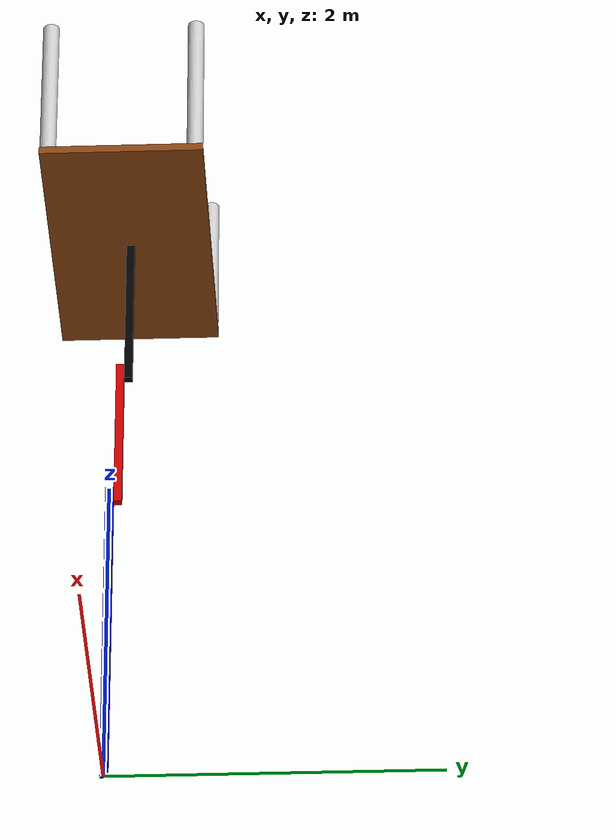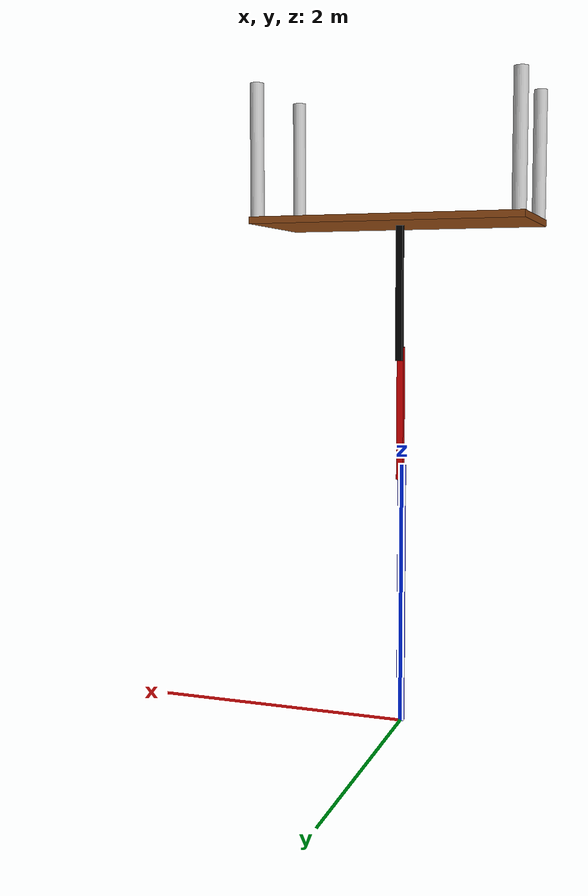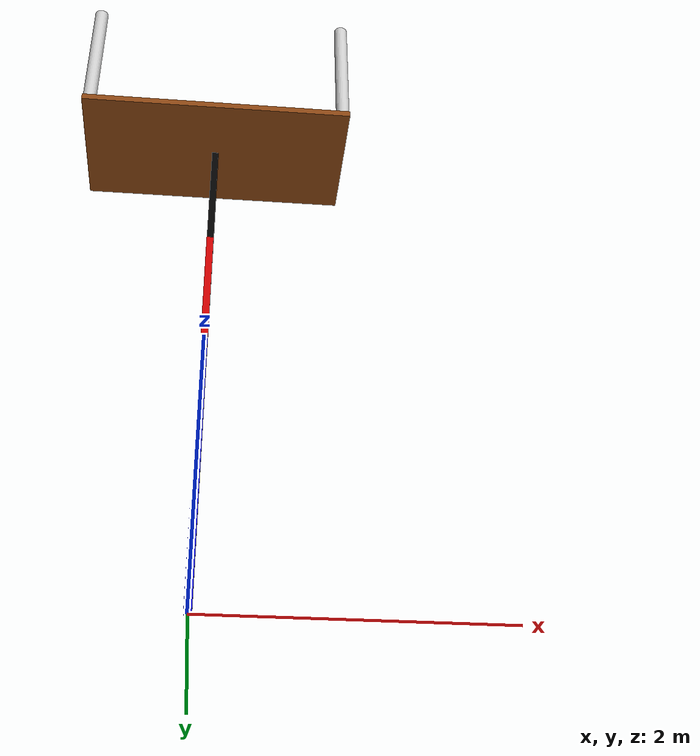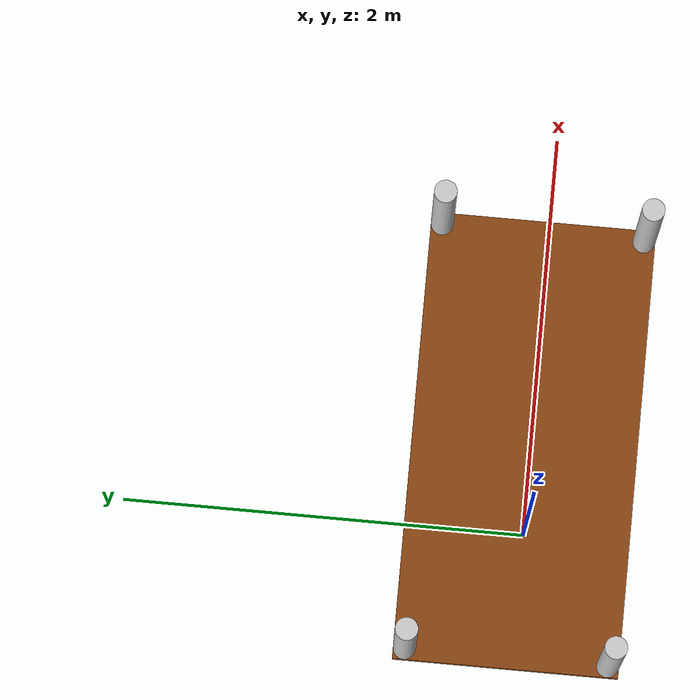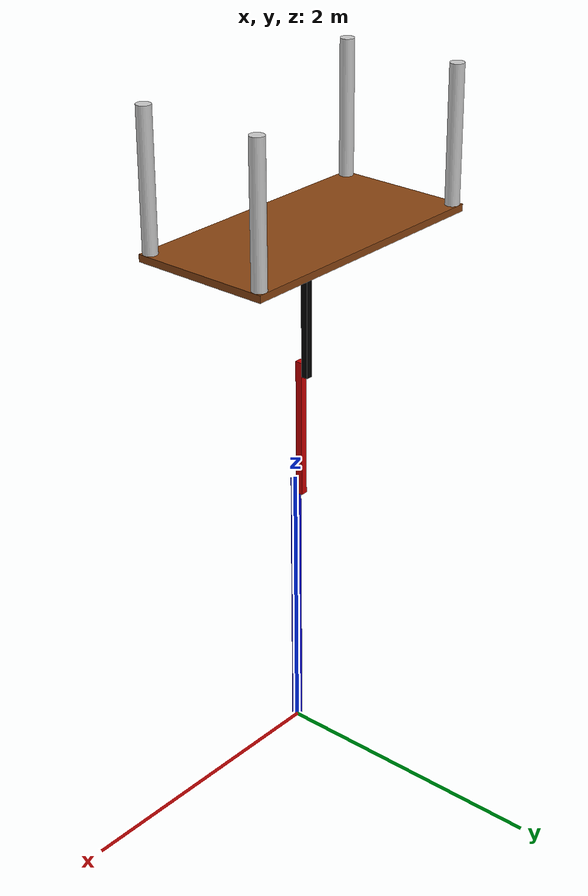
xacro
<?xml version="1.0" encoding="UTF-8"?>
<robot xmlns:xacro="http://wiki.ros.org/xacro" name="table">

    <xacro:include filename="inertials.xacro" />
    <xacro:include filename="materials.xacro" />
    <xacro:include filename="table_macro.xacro" />
    <xacro:include filename="rrbot_macro.xacro" />

    <link name="world" />

    <xacro:rrbot parent="world">
        <origin xyz="0 0 0" rpy="0 0 0" />
    </xacro:rrbot>

    <xacro:table parent="tool0">
        <origin xyz="0 0 0" rpy="${pi} 0 0" />
    </xacro:table>

</robot>

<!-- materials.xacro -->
<robot>
  <material name="black">
    <color rgba="0.0 0.0 0.0 1.0"/>
  </material>

  <material name="blue">
    <color rgba="0.0 0.0 0.8 1.0"/>
  </material>

  <material name="green">
    <color rgba="0.0 1.0 0.0 1.0"/>
  </material>

  <material name="dark_grey">
    <color rgba="0.2 0.2 0.2 1.0"/>
  </material>

  <material name="grey">
    <color rgba="0.5 0.5 0.5 1.0"/>
  </material>

  <material name="light_grey">
    <color rgba="0.8 0.8 0.8 1.0"/>
  </material>

  <material name="orange">
    <color rgba="${255/255} ${108/255} ${10/255} 1.0"/>
  </material>

<material name="brown">
    <color rgba="0.54 0.27 0.07 1.0"/>
</material>

  <material name="red">
    <color rgba="0.8 0.0 0.0 1.0"/>
  </material>

  <material name="white">
    <color rgba="1.0 1.0 1.0 1.0"/>
  </material>

</robot>

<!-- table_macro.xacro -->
<robot xmlns:xacro="http://www.ros.org/wiki/xacro">

  <!-- Macro for creating a leg -->
  <xacro:macro name="leg" params="name">
    <link name="${name}">
      <visual>
        <origin xyz="0 0 ${-leg_length/2}" rpy="0 0 0" />
        <geometry>
          <cylinder length="${leg_length}" radius="${leg_radius}" />
        </geometry>
        <material name="light_grey" />
      </visual>
      <collision>
        <origin xyz="0 0 ${-leg_length/2}" rpy="0 0 0" />
        <geometry>
          <cylinder length="${leg_length}" radius="${leg_radius}" />
        </geometry>
      </collision>

      <xacro:cylinder_inertial radius="${leg_radius}" length="${leg_length}" mass="${leg_mass}">
        <origin xyz="0 0 ${-leg_length/2}" rpy="0 0 0" />
      </xacro:cylinder_inertial>
    </link>
  </xacro:macro>

  <xacro:macro name="table" params="parent *origin">

    <!-- Constants for Table and Legs -->
    <xacro:property name="table_length" value="2" />
    <xacro:property name="table_width" value="1" />
    <xacro:property name="table_height" value="1" />
    <xacro:property name="table_thickness" value="0.05" />
    <xacro:property name="wood_density" value="800" />
    <xacro:property name="table_mass" value="${table_length * table_width * table_thickness * wood_density}" />
    <xacro:property name="leg_length" value="${table_height - table_thickness}" />
    <xacro:property name="leg_radius" value="0.05" />
    <xacro:property name="aluminum_density" value="2700" />
    <xacro:property name="leg_mass" value="${pi*leg_radius*leg_radius*leg_length*aluminum_density}" />

    <!-- create four legs -->
    <xacro:leg name="leg1" />
    <xacro:leg name="leg2" />
    <xacro:leg name="leg3" />
    <xacro:leg name="leg4" />

    <!-- Attach the legs to the table_top using fixed joints -->
    <joint name="leg1_joint" type="fixed">
      <parent link="table_top" />
      <child link="leg1" />
      <origin xyz="${table_length/2 - leg_radius} ${table_width/2 - leg_radius} ${-table_thickness}" rpy="0 0 0" />
    </joint>

    <joint name="leg2_joint" type="fixed">
      <parent link="table_top" />
      <child link="leg2" />
      <origin xyz="${-table_length/2 + leg_radius} ${table_width/2 - leg_radius} ${-table_thickness}" rpy="0 0 0" />
    </joint>

    <joint name="leg3_joint" type="fixed">
      <parent link="table_top" />
      <child link="leg3" />
      <origin xyz="${-table_length/2 + leg_radius} ${-table_width/2 + leg_radius} ${-table_thickness}" rpy="0 0 0" />
    </joint>

    <joint name="leg4_joint" type="fixed">
      <parent link="table_top" />
      <child link="leg4" />
      <origin xyz="${table_length/2 - leg_radius} ${-table_width/2 + leg_radius} ${-table_thickness}" rpy="0 0 0" />
    </joint>

    <!-- Table top joint -->
    <joint name="table_top_joint" type="fixed">
      <parent link="${parent}" />
      <child link="table_top" />
      <origin xyz="0 0 0" rpy="${pi} 0 0" />
    </joint>

  <!-- Base Link, Table Top -->
    <link name="table_top">
      <collision>
        <origin xyz="0 0 ${-table_thickness/2}" rpy="0 0 0" />
        <geometry>
          <box size="${table_length} ${table_width} ${table_thickness}" />
        </geometry>
      </collision>

      <visual>
        <origin xyz="0 0 ${-table_thickness/2}" rpy="0 0 0" />
        <geometry>
          <box size="${table_length} ${table_width} ${table_thickness}" />
        </geometry>
        <material name="brown" />
      </visual>

      <xacro:box_inertial x="${table_width}" y="${table_length}" z="${table_thickness}" mass="${table_mass}">
        <origin xyz="0 0 ${table_thickness / 2}" rpy="0 0 0" />
      </xacro:box_inertial>
    </link>

  </xacro:macro>

</robot>

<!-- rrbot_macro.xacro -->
<robot xmlns:xacro="http://www.ros.org/wiki/xacro">

  <xacro:macro name="rrbot" params="parent *origin">

    <!-- Constants for robot dimensions -->
    <xacro:property name="mass" value="10" /> <!-- arbitrary value for mass -->
    <xacro:property name="width" value="0.05" /> <!-- Square dimensions (widthxwidth) of beams -->
    <xacro:property name="height1" value="2" /> <!-- Link 1 -->
    <xacro:property name="height2" value="1" /> <!-- Link 2 -->
    <xacro:property name="height3" value="1" /> <!-- Link 3 -->
    <xacro:property name="axel_offset" value="0.05" /> <!-- Space btw top of beam and the each joint -->

    <joint name="base_joint" type="fixed">
      <xacro:insert_block name="origin" />
      <parent link="${parent}" />
      <child link="base_link" />
    </joint>

    <!-- Base Link -->
    <link name="base_link">
      <collision>
        <origin xyz="0 0 ${height1/2}" rpy="0 0 0" />
        <geometry>
          <box size="${width} ${width} ${height1}" />
        </geometry>
      </collision>

      <visual>
        <origin xyz="0 0 ${height1/2}" rpy="0 0 0" />
        <geometry>
          <box size="${width} ${width} ${height1}" />
        </geometry>
        <material name="blue" />
      </visual>

      <xacro:box_inertial x="${width}" y="${width}" z="${height1}" mass="${mass}">
        <origin xyz="0 0 ${height1/2}" rpy="0 0 0" />
      </xacro:box_inertial>
    </link>

    <joint name="joint1" type="continuous">
      <parent link="base_link" />
      <child link="link1" />
      <origin xyz="0 ${width} ${height1 - axel_offset}" rpy="0 0 0" />
      <axis xyz="0 1 0" />
      <limit effort="1000" velocity="10.0" />
    </joint>

    <!-- Middle Link -->
    <link name="link1">
      <collision>
        <origin xyz="0 0 ${height2/2 - axel_offset}" rpy="0 0 0" />
        <geometry>
          <box size="${width} ${width} ${height2}" />
        </geometry>
      </collision>

      <visual>
        <origin xyz="0 0 ${height2/2 - axel_offset}" rpy="0 0 0" />
        <geometry>
          <box size="${width} ${width} ${height2}" />
        </geometry>
        <material name="red" />
      </visual>

      <xacro:box_inertial x="${width}" y="${width}" z="${height2}" mass="${mass}">
        <origin xyz="0 0 ${height2/2 - axel_offset}" rpy="0 0 0" />
      </xacro:box_inertial>
    </link>

    <joint name="joint2" type="continuous">
      <parent link="link1" />
      <child link="link2" />
      <origin xyz="0 ${width} ${height2 - axel_offset*2}" rpy="0 0 0" />
      <axis xyz="0 1 0" />
      <limit effort="1000" velocity="10.0" />
    </joint>

    <!-- Top Link -->
    <link name="link2">
      <collision>
        <origin xyz="0 0 ${height3/2 - axel_offset}" rpy="0 0 0" />
        <geometry>
          <box size="${width} ${width} ${height3}" />
        </geometry>
      </collision>

      <visual>
        <origin xyz="0 0 ${height3/2 - axel_offset}" rpy="0 0 0" />
        <geometry>
          <box size="${width} ${width} ${height3}" />
        </geometry>
        <material name="black" />
      </visual>

      <xacro:box_inertial x="${width}" y="${width}" z="${height3}" mass="${mass}">
        <origin xyz="0 0 ${height3/2 - axel_offset}" rpy="0 0 0" />
      </xacro:box_inertial>
    </link>

    <joint name="tool_joint" type="fixed">
      <origin xyz="0 0 ${height3-axel_offset}" rpy="0 0 0" />
      <parent link="link2" />
      <child link="tool0" />
    </joint>

    <!-- Tool Link -->
    <link name="tool0"/>

  </xacro:macro>

</robot>
